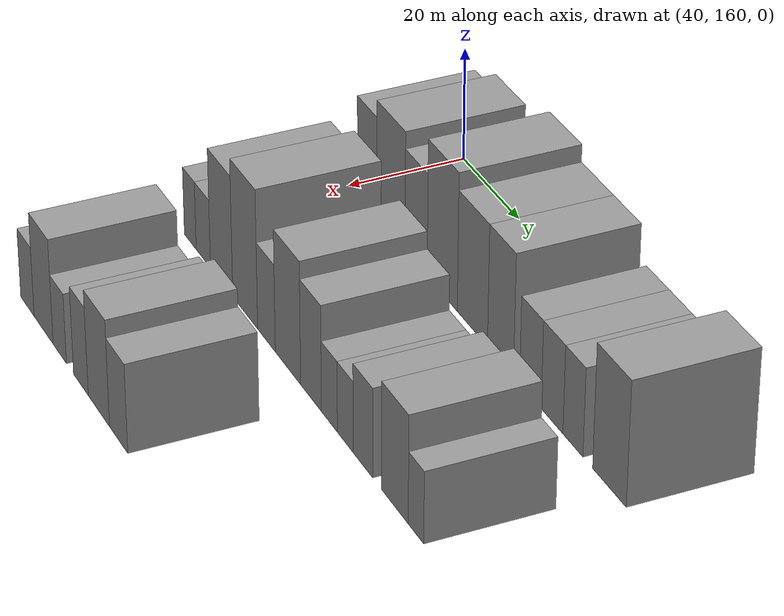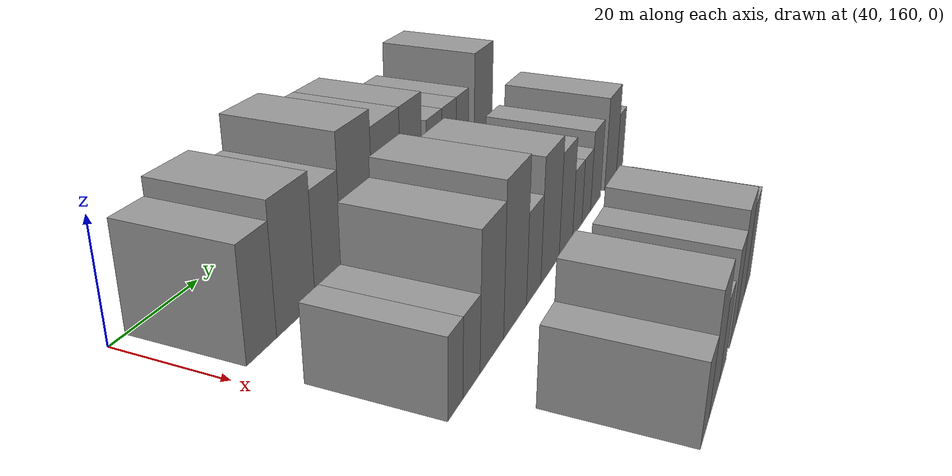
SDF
<sdf version="1.6">
 <world name="default">
  <model name="building_61">
   <static>1</static>
   <pose>50.0000 167.1661 0 0.000000 0.000000 0.000000</pose>
   <link name="link">
    <pose>0 0 9.00 0 0 0</pose>
    <collision name="collision"><geometry><box><size>20.0000 7.4073 18.0000</size></box></geometry></collision>
    <visual name="visual">
     <cast_shadows>0</cast_shadows>
     <geometry><box><size>20.0000 7.4073 18.0000</size></box></geometry>
     <material>
      <script>
       <uri>model://grey_wall/materials/scripts</uri>
       <uri>model://grey_wall/materials/textures</uri>
       <name>vrc/grey_wall</name>
      </script>
     </material>
    </visual>
   </link>
  </model>
  <model name="building_62">
   <static>1</static>
   <pose>50.0000 176.1148 0 0.000000 0.000000 0.000000</pose>
   <link name="link">
    <pose>0 0 10.50 0 0 0</pose>
    <collision name="collision"><geometry><box><size>20.0000 10.4902 21.0000</size></box></geometry></collision>
    <visual name="visual">
     <cast_shadows>0</cast_shadows>
     <geometry><box><size>20.0000 10.4902 21.0000</size></box></geometry>
     <material>
      <script>
       <uri>model://grey_wall/materials/scripts</uri>
       <uri>model://grey_wall/materials/textures</uri>
       <name>vrc/grey_wall</name>
      </script>
     </material>
    </visual>
   </link>
  </model>
  <model name="building_63">
   <static>1</static>
   <pose>50.0000 185.3982 0 0.000000 0.000000 0.000000</pose>
   <link name="link">
    <pose>0 0 9.00 0 0 0</pose>
    <collision name="collision"><geometry><box><size>20.0000 8.0765 18.0000</size></box></geometry></collision>
    <visual name="visual">
     <cast_shadows>0</cast_shadows>
     <geometry><box><size>20.0000 8.0765 18.0000</size></box></geometry>
     <material>
      <script>
       <uri>model://grey_wall/materials/scripts</uri>
       <uri>model://grey_wall/materials/textures</uri>
       <name>vrc/grey_wall</name>
      </script>
     </material>
    </visual>
   </link>
  </model>
  <model name="building_64">
   <static>1</static>
   <pose>50.0000 194.7967 0 0.000000 0.000000 0.000000</pose>
   <link name="link">
    <pose>0 0 12.00 0 0 0</pose>
    <collision name="collision"><geometry><box><size>20.0000 10.7207 24.0000</size></box></geometry></collision>
    <visual name="visual">
     <cast_shadows>0</cast_shadows>
     <geometry><box><size>20.0000 10.7207 24.0000</size></box></geometry>
     <material>
      <script>
       <uri>model://grey_wall/materials/scripts</uri>
       <uri>model://grey_wall/materials/textures</uri>
       <name>vrc/grey_wall</name>
      </script>
     </material>
    </visual>
   </link>
  </model>
  <model name="building_65">
   <static>1</static>
   <pose>50.0000 205.3637 0 0.000000 0.000000 0.000000</pose>
   <link name="link">
    <pose>0 0 10.50 0 0 0</pose>
    <collision name="collision"><geometry><box><size>20.0000 10.4133 21.0000</size></box></geometry></collision>
    <visual name="visual">
     <cast_shadows>0</cast_shadows>
     <geometry><box><size>20.0000 10.4133 21.0000</size></box></geometry>
     <material>
      <script>
       <uri>model://grey_wall/materials/scripts</uri>
       <uri>model://grey_wall/materials/textures</uri>
       <name>vrc/grey_wall</name>
      </script>
     </material>
    </visual>
   </link>
  </model>
  <model name="building_66">
   <static>1</static>
   <pose>50.0000 214.9520 0 0.000000 0.000000 0.000000</pose>
   <link name="link">
    <pose>0 0 10.50 0 0 0</pose>
    <collision name="collision"><geometry><box><size>20.0000 8.7633 21.0000</size></box></geometry></collision>
    <visual name="visual">
     <cast_shadows>0</cast_shadows>
     <geometry><box><size>20.0000 8.7633 21.0000</size></box></geometry>
     <material>
      <script>
       <uri>model://grey_wall/materials/scripts</uri>
       <uri>model://grey_wall/materials/textures</uri>
       <name>vrc/grey_wall</name>
      </script>
     </material>
    </visual>
   </link>
  </model>
  <model name="building_67">
   <static>1</static>
   <pose>50.0000 224.8549 0 0.000000 0.000000 0.000000</pose>
   <link name="link">
    <pose>0 0 7.50 0 0 0</pose>
    <collision name="collision"><geometry><box><size>20.0000 7.0425 15.0000</size></box></geometry></collision>
    <visual name="visual">
     <cast_shadows>0</cast_shadows>
     <geometry><box><size>20.0000 7.0425 15.0000</size></box></geometry>
     <material>
      <script>
       <uri>model://grey_wall/materials/scripts</uri>
       <uri>model://grey_wall/materials/textures</uri>
       <name>vrc/grey_wall</name>
      </script>
     </material>
    </visual>
   </link>
  </model>
  <model name="building_68">
   <static>1</static>
   <pose>50.0000 231.8594 0 0.000000 0.000000 0.000000</pose>
   <link name="link">
    <pose>0 0 7.50 0 0 0</pose>
    <collision name="collision"><geometry><box><size>20.0000 6.9664 15.0000</size></box></geometry></collision>
    <visual name="visual">
     <cast_shadows>0</cast_shadows>
     <geometry><box><size>20.0000 6.9664 15.0000</size></box></geometry>
     <material>
      <script>
       <uri>model://grey_wall/materials/scripts</uri>
       <uri>model://grey_wall/materials/textures</uri>
       <name>vrc/grey_wall</name>
      </script>
     </material>
    </visual>
   </link>
  </model>
  <model name="building_69">
   <static>1</static>
   <pose>50.0000 238.4958 0 0.000000 0.000000 0.000000</pose>
   <link name="link">
    <pose>0 0 7.50 0 0 0</pose>
    <collision name="collision"><geometry><box><size>20.0000 6.3065 15.0000</size></box></geometry></collision>
    <visual name="visual">
     <cast_shadows>0</cast_shadows>
     <geometry><box><size>20.0000 6.3065 15.0000</size></box></geometry>
     <material>
      <script>
       <uri>model://grey_wall/materials/scripts</uri>
       <uri>model://grey_wall/materials/textures</uri>
       <name>vrc/grey_wall</name>
      </script>
     </material>
    </visual>
   </link>
  </model>
  <model name="building_70">
   <static>1</static>
   <pose>50.0000 249.7604 0 0.000000 0.000000 0.000000</pose>
   <link name="link">
    <pose>0 0 10.50 0 0 0</pose>
    <collision name="collision"><geometry><box><size>20.0000 10.2226 21.0000</size></box></geometry></collision>
    <visual name="visual">
     <cast_shadows>0</cast_shadows>
     <geometry><box><size>20.0000 10.2226 21.0000</size></box></geometry>
     <material>
      <script>
       <uri>model://grey_wall/materials/scripts</uri>
       <uri>model://grey_wall/materials/textures</uri>
       <name>vrc/grey_wall</name>
      </script>
     </material>
    </visual>
   </link>
  </model>
  <model name="building_136">
   <static>1</static>
   <pose>79.0000 165.5498 0 0.000000 0.000000 0.000000</pose>
   <link name="link">
    <pose>0 0 6.00 0 0 0</pose>
    <collision name="collision"><geometry><box><size>20.0000 4.8491 12.0000</size></box></geometry></collision>
    <visual name="visual">
     <cast_shadows>0</cast_shadows>
     <geometry><box><size>20.0000 4.8491 12.0000</size></box></geometry>
     <material>
      <script>
       <uri>model://grey_wall/materials/scripts</uri>
       <uri>model://grey_wall/materials/textures</uri>
       <name>vrc/grey_wall</name>
      </script>
     </material>
    </visual>
   </link>
  </model>
  <model name="building_137">
   <static>1</static>
   <pose>79.0000 170.9024 0 0.000000 0.000000 0.000000</pose>
   <link name="link">
    <pose>0 0 6.00 0 0 0</pose>
    <collision name="collision"><geometry><box><size>20.0000 5.8561 12.0000</size></box></geometry></collision>
    <visual name="visual">
     <cast_shadows>0</cast_shadows>
     <geometry><box><size>20.0000 5.8561 12.0000</size></box></geometry>
     <material>
      <script>
       <uri>model://grey_wall/materials/scripts</uri>
       <uri>model://grey_wall/materials/textures</uri>
       <name>vrc/grey_wall</name>
      </script>
     </material>
    </visual>
   </link>
  </model>
  <model name="building_138">
   <static>1</static>
   <pose>79.0000 178.2999 0 0.000000 0.000000 0.000000</pose>
   <link name="link">
    <pose>0 0 10.50 0 0 0</pose>
    <collision name="collision"><geometry><box><size>20.0000 8.9388 21.0000</size></box></geometry></collision>
    <visual name="visual">
     <cast_shadows>0</cast_shadows>
     <geometry><box><size>20.0000 8.9388 21.0000</size></box></geometry>
     <material>
      <script>
       <uri>model://grey_wall/materials/scripts</uri>
       <uri>model://grey_wall/materials/textures</uri>
       <name>vrc/grey_wall</name>
      </script>
     </material>
    </visual>
   </link>
  </model>
  <model name="building_139">
   <static>1</static>
   <pose>79.0000 187.6305 0 0.000000 0.000000 0.000000</pose>
   <link name="link">
    <pose>0 0 12.00 0 0 0</pose>
    <collision name="collision"><geometry><box><size>20.0000 9.7225 24.0000</size></box></geometry></collision>
    <visual name="visual">
     <cast_shadows>0</cast_shadows>
     <geometry><box><size>20.0000 9.7225 24.0000</size></box></geometry>
     <material>
      <script>
       <uri>model://grey_wall/materials/scripts</uri>
       <uri>model://grey_wall/materials/textures</uri>
       <name>vrc/grey_wall</name>
      </script>
     </material>
    </visual>
   </link>
  </model>
  <model name="building_140">
   <static>1</static>
   <pose>79.0000 195.8603 0 0.000000 0.000000 0.000000</pose>
   <link name="link">
    <pose>0 0 7.50 0 0 0</pose>
    <collision name="collision"><geometry><box><size>20.0000 6.7371 15.0000</size></box></geometry></collision>
    <visual name="visual">
     <cast_shadows>0</cast_shadows>
     <geometry><box><size>20.0000 6.7371 15.0000</size></box></geometry>
     <material>
      <script>
       <uri>model://grey_wall/materials/scripts</uri>
       <uri>model://grey_wall/materials/textures</uri>
       <name>vrc/grey_wall</name>
      </script>
     </material>
    </visual>
   </link>
  </model>
  <model name="building_141">
   <static>1</static>
   <pose>79.0000 203.9608 0 0.000000 0.000000 0.000000</pose>
   <link name="link">
    <pose>0 0 10.50 0 0 0</pose>
    <collision name="collision"><geometry><box><size>20.0000 9.4640 21.0000</size></box></geometry></collision>
    <visual name="visual">
     <cast_shadows>0</cast_shadows>
     <geometry><box><size>20.0000 9.4640 21.0000</size></box></geometry>
     <material>
      <script>
       <uri>model://grey_wall/materials/scripts</uri>
       <uri>model://grey_wall/materials/textures</uri>
       <name>vrc/grey_wall</name>
      </script>
     </material>
    </visual>
   </link>
  </model>
  <model name="building_142">
   <static>1</static>
   <pose>79.0000 212.4863 0 0.000000 0.000000 0.000000</pose>
   <link name="link">
    <pose>0 0 9.00 0 0 0</pose>
    <collision name="collision"><geometry><box><size>20.0000 7.5870 18.0000</size></box></geometry></collision>
    <visual name="visual">
     <cast_shadows>0</cast_shadows>
     <geometry><box><size>20.0000 7.5870 18.0000</size></box></geometry>
     <material>
      <script>
       <uri>model://grey_wall/materials/scripts</uri>
       <uri>model://grey_wall/materials/textures</uri>
       <name>vrc/grey_wall</name>
      </script>
     </material>
    </visual>
   </link>
  </model>
  <model name="building_143">
   <static>1</static>
   <pose>79.0000 219.1051 0 0.000000 0.000000 0.000000</pose>
   <link name="link">
    <pose>0 0 6.00 0 0 0</pose>
    <collision name="collision"><geometry><box><size>20.0000 5.6507 12.0000</size></box></geometry></collision>
    <visual name="visual">
     <cast_shadows>0</cast_shadows>
     <geometry><box><size>20.0000 5.6507 12.0000</size></box></geometry>
     <material>
      <script>
       <uri>model://grey_wall/materials/scripts</uri>
       <uri>model://grey_wall/materials/textures</uri>
       <name>vrc/grey_wall</name>
      </script>
     </material>
    </visual>
   </link>
  </model>
  <model name="building_144">
   <static>1</static>
   <pose>79.0000 224.7075 0 0.000000 0.000000 0.000000</pose>
   <link name="link">
    <pose>0 0 6.00 0 0 0</pose>
    <collision name="collision"><geometry><box><size>20.0000 5.5541 12.0000</size></box></geometry></collision>
    <visual name="visual">
     <cast_shadows>0</cast_shadows>
     <geometry><box><size>20.0000 5.5541 12.0000</size></box></geometry>
     <material>
      <script>
       <uri>model://grey_wall/materials/scripts</uri>
       <uri>model://grey_wall/materials/textures</uri>
       <name>vrc/grey_wall</name>
      </script>
     </material>
    </visual>
   </link>
  </model>
  <model name="building_145">
   <static>1</static>
   <pose>79.0000 230.8540 0 0.000000 0.000000 0.000000</pose>
   <link name="link">
    <pose>0 0 7.50 0 0 0</pose>
    <collision name="collision"><geometry><box><size>20.0000 6.7390 15.0000</size></box></geometry></collision>
    <visual name="visual">
     <cast_shadows>0</cast_shadows>
     <geometry><box><size>20.0000 6.7390 15.0000</size></box></geometry>
     <material>
      <script>
       <uri>model://grey_wall/materials/scripts</uri>
       <uri>model://grey_wall/materials/textures</uri>
       <name>vrc/grey_wall</name>
      </script>
     </material>
    </visual>
   </link>
  </model>
  <model name="building_146">
   <static>1</static>
   <pose>79.0000 241.6900 0 0.000000 0.000000 0.000000</pose>
   <link name="link">
    <pose>0 0 9.00 0 0 0</pose>
    <collision name="collision"><geometry><box><size>20.0000 8.9329 18.0000</size></box></geometry></collision>
    <visual name="visual">
     <cast_shadows>0</cast_shadows>
     <geometry><box><size>20.0000 8.9329 18.0000</size></box></geometry>
     <material>
      <script>
       <uri>model://grey_wall/materials/scripts</uri>
       <uri>model://grey_wall/materials/textures</uri>
       <name>vrc/grey_wall</name>
      </script>
     </material>
    </visual>
   </link>
  </model>
  <model name="building_147">
   <static>1</static>
   <pose>79.0000 248.6959 0 0.000000 0.000000 0.000000</pose>
   <link name="link">
    <pose>0 0 6.00 0 0 0</pose>
    <collision name="collision"><geometry><box><size>20.0000 5.0788 12.0000</size></box></geometry></collision>
    <visual name="visual">
     <cast_shadows>0</cast_shadows>
     <geometry><box><size>20.0000 5.0788 12.0000</size></box></geometry>
     <material>
      <script>
       <uri>model://grey_wall/materials/scripts</uri>
       <uri>model://grey_wall/materials/textures</uri>
       <name>vrc/grey_wall</name>
      </script>
     </material>
    </visual>
   </link>
  </model>
  <model name="building_213">
   <static>1</static>
   <pose>108.0000 172.7912 0 0.000000 0.000000 0.000000</pose>
   <link name="link">
    <pose>0 0 6.00 0 0 0</pose>
    <collision name="collision"><geometry><box><size>20.0000 5.9394 12.0000</size></box></geometry></collision>
    <visual name="visual">
     <cast_shadows>0</cast_shadows>
     <geometry><box><size>20.0000 5.9394 12.0000</size></box></geometry>
     <material>
      <script>
       <uri>model://grey_wall/materials/scripts</uri>
       <uri>model://grey_wall/materials/textures</uri>
       <name>vrc/grey_wall</name>
      </script>
     </material>
    </visual>
   </link>
  </model>
  <model name="building_214">
   <static>1</static>
   <pose>108.0000 179.8837 0 0.000000 0.000000 0.000000</pose>
   <link name="link">
    <pose>0 0 9.00 0 0 0</pose>
    <collision name="collision"><geometry><box><size>20.0000 8.2454 18.0000</size></box></geometry></collision>
    <visual name="visual">
     <cast_shadows>0</cast_shadows>
     <geometry><box><size>20.0000 8.2454 18.0000</size></box></geometry>
     <material>
      <script>
       <uri>model://grey_wall/materials/scripts</uri>
       <uri>model://grey_wall/materials/textures</uri>
       <name>vrc/grey_wall</name>
      </script>
     </material>
    </visual>
   </link>
  </model>
  <model name="building_215">
   <static>1</static>
   <pose>108.0000 186.8578 0 0.000000 0.000000 0.000000</pose>
   <link name="link">
    <pose>0 0 6.00 0 0 0</pose>
    <collision name="collision"><geometry><box><size>20.0000 5.7028 12.0000</size></box></geometry></collision>
    <visual name="visual">
     <cast_shadows>0</cast_shadows>
     <geometry><box><size>20.0000 5.7028 12.0000</size></box></geometry>
     <material>
      <script>
       <uri>model://grey_wall/materials/scripts</uri>
       <uri>model://grey_wall/materials/textures</uri>
       <name>vrc/grey_wall</name>
      </script>
     </material>
    </visual>
   </link>
  </model>
  <model name="building_216">
   <static>1</static>
   <pose>108.0000 195.7811 0 0.000000 0.000000 0.000000</pose>
   <link name="link">
    <pose>0 0 7.50 0 0 0</pose>
    <collision name="collision"><geometry><box><size>20.0000 6.1439 15.0000</size></box></geometry></collision>
    <visual name="visual">
     <cast_shadows>0</cast_shadows>
     <geometry><box><size>20.0000 6.1439 15.0000</size></box></geometry>
     <material>
      <script>
       <uri>model://grey_wall/materials/scripts</uri>
       <uri>model://grey_wall/materials/textures</uri>
       <name>vrc/grey_wall</name>
      </script>
     </material>
    </visual>
   </link>
  </model>
  <model name="building_217">
   <static>1</static>
   <pose>108.0000 203.1690 0 0.000000 0.000000 0.000000</pose>
   <link name="link">
    <pose>0 0 9.00 0 0 0</pose>
    <collision name="collision"><geometry><box><size>20.0000 8.6319 18.0000</size></box></geometry></collision>
    <visual name="visual">
     <cast_shadows>0</cast_shadows>
     <geometry><box><size>20.0000 8.6319 18.0000</size></box></geometry>
     <material>
      <script>
       <uri>model://grey_wall/materials/scripts</uri>
       <uri>model://grey_wall/materials/textures</uri>
       <name>vrc/grey_wall</name>
      </script>
     </material>
    </visual>
   </link>
  </model>
  <model name="building_218">
   <static>1</static>
   <pose>108.0000 211.1183 0 0.000000 0.000000 0.000000</pose>
   <link name="link">
    <pose>0 0 7.50 0 0 0</pose>
    <collision name="collision"><geometry><box><size>20.0000 7.2666 15.0000</size></box></geometry></collision>
    <visual name="visual">
     <cast_shadows>0</cast_shadows>
     <geometry><box><size>20.0000 7.2666 15.0000</size></box></geometry>
     <material>
      <script>
       <uri>model://grey_wall/materials/scripts</uri>
       <uri>model://grey_wall/materials/textures</uri>
       <name>vrc/grey_wall</name>
      </script>
     </material>
    </visual>
   </link>
  </model>
 </world>
</sdf>
